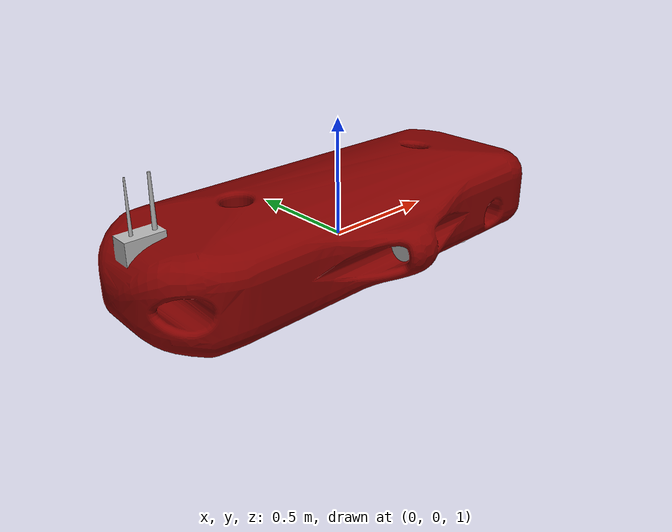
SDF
<?xml version="1.0" ?>
<sdf version="1.4">
	<model name="flatfish">
		<pose>0 0 1.0 0 0 3.1416</pose>
		<link name="flatfish_body">
			<visual name="visual">
				<geometry>
					<mesh>
					<uri>model://flatfish/flatfish_05.dae</uri>
					</mesh>
				</geometry>
			</visual>

			<visual name="visual_thruster_0">
				<pose>0.51 0 0 0 0 0</pose>
				<geometry>
					<cylinder>
						<radius>0.05</radius>
						<length>0.1</length>
					</cylinder>
				</geometry>
			</visual>

			<visual name="visual_thruster_1">
				<pose>-0.46 0 0 0 0 0</pose>
				<geometry>
					<cylinder>
						<radius>0.05</radius>
						<length>0.1</length>
					</cylinder>
				</geometry>
			</visual>

			<visual name="visual_thruster_2">
				<pose>-0.62 0.0 0.025 1.5708 0 0</pose>
				<geometry>
					<cylinder>
						<radius>0.05</radius>
						<length>0.1</length>
					</cylinder>
				</geometry>
			</visual>

			<visual name="visual_thruster_3">
				<pose>0.875 0.0 0.085 1.5708 0 0</pose>
				<geometry>
					<cylinder>
						<radius>0.05</radius>
						<length>0.1</length>
					</cylinder>
				</geometry>
			</visual>

			<visual name="visual_thruster_4">
				<pose>0 0.4 0.085 0 1.5708 0</pose>
				<geometry>
					<cylinder>
						<radius>0.05</radius>
						<length>0.1</length>
					</cylinder>
				</geometry>
			</visual>

			<visual name="visual_thruster_5">
				<pose>0 -0.4 0.085 0 1.5708 0</pose>
				<geometry>
					<cylinder>
						<radius>0.05</radius>
						<length>0.1</length>
					</cylinder>
				</geometry>
			</visual>

			<collision name="collision">
				<geometry>
					<mesh>
					<uri>model://flatfish/collision.STL</uri>
					</mesh>
				</geometry>
			</collision>
			<inertial>
				<pose>0 0 -1 0 0 0</pose>
                <inertia>
                    <ixx>0.1</ixx>
                    <ixy>0</ixy>
                    <ixz>0.0</ixz>
                    <iyy>0.01</iyy>
                    <iyz>0</iyz>
                    <izz>0.0</izz>
                </inertia>
                <mass>10.0</mass>
			</inertial>
		</link>

		<plugin name="model_fluid" filename="libmodel_fluid_plugin.so">
			<buoyancy>
				<ref_link>flatfish_body</ref_link>
				<params>
					<compensation>1.0</compensation>
					<buoyancy_center>0 0 0</buoyancy_center>
					<viscous_damping>1 1 1</viscous_damping>
					<limit>0.5</limit>
				</params>
			</buoyancy>
			<thruster>
				<name>thruster_0</name>
				<pose>0.51 0 0</pose>
				<initial_force>0 0 1000</initial_force>
			</thruster>
			<thruster>
				<name>thruster_1</name>
				<pose>-0.46 0 0</pose>
				<initial_force>0 0 1000</initial_force>
			</thruster>
			<thruster>
				<name>thruster_2</name>
				<pose>-0.62 0.0 0.025</pose>
				<initial_force>0 0 0</initial_force>
			</thruster>
			<thruster>
				<name>thruster_3</name>
				<pose>0.875 0.0 0.085</pose>
				<initial_force>0 0 0</initial_force>
			</thruster>
			<thruster>
				<name>thruster_4</name>
				<pose>0 0.4 0.085</pose>
				<initial_force>0 0 0</initial_force>
			</thruster>
			<thruster>
				<name>thruster_5</name>
				<pose>0 -0.4 0.085</pose>
				<initial_force>0 0 0</initial_force>
			</thruster>
		</plugin>

	</model>
</sdf>
